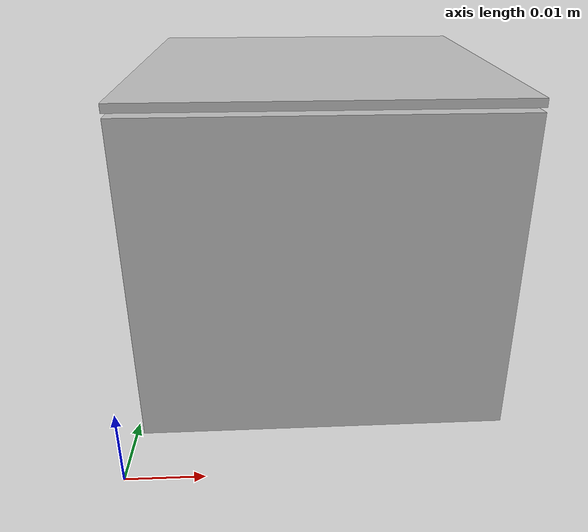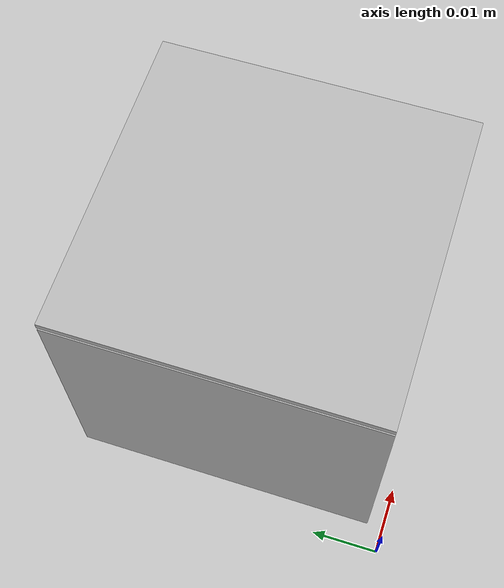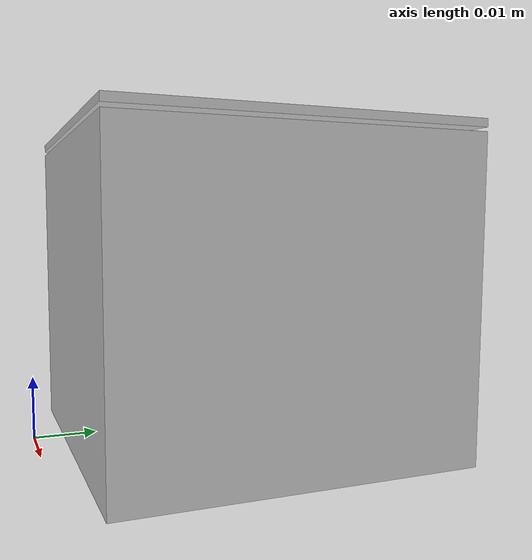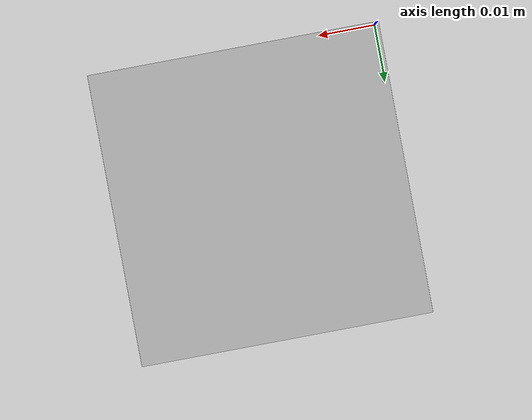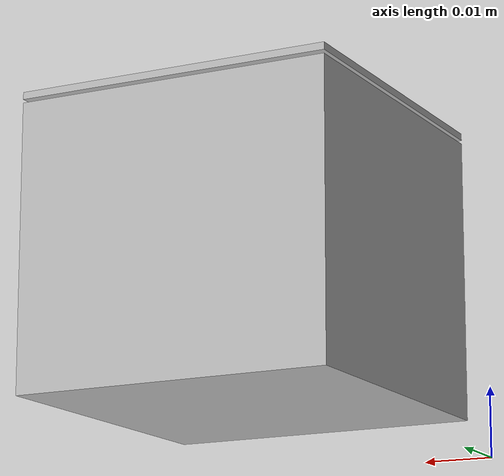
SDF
<?xml version="1.0"?>
<sdf version="1.5">
  <model name="block">

    <pose>0 0 0 0 0 0</pose>
    <static>false</static>
    <link name="box">
      <pose>0.025 0.025 0.025 0 0 0</pose>
      <self_collide>true</self_collide>
      <inertial>
        <inertia>
          <ixx>0.0001</ixx>
          <ixy>0</ixy>
          <ixz>0</ixz>
          <iyy>0.0001</iyy>
          <iyz>0</iyz>
          <izz>0.0001</izz>
        </inertia>
        <mass>0.5</mass>
      </inertial>

      <collision name="collision">
        <geometry>
          <box>
            <size>0.045 0.045 0.04</size>
          </box>
        </geometry>
      </collision>

      <visual name="visual">
        <geometry>
          <box>
            <size>0.045 0.045 0.04</size>
          </box>
        </geometry>
      </visual>
    </link>

    <link name="tag">
      <pose>0.025 0.025 0.046 0 0 0</pose>
      <static>false</static>
      <gravity>true</gravity>
      <self_collide>true</self_collide>
      <inertial>
        <inertia>
          <ixx>0.0001</ixx>
          <ixy>0</ixy>
          <ixz>0</ixz>
          <iyy>0.0001</iyy>
          <iyz>0</iyz>
          <izz>0.0001</izz>
        </inertia>
        <mass>0.008</mass>
      </inertial>

      <collision name="collision">
        <geometry>
          <box>
            <size>0.045 0.045 0.001</size>
          </box>
        </geometry>
      </collision>

      <visual name="visual">
        <geometry>
          <box>
            <normal>0 0 1</normal>
            <size>0.045 0.045 0.001</size>
          </box>
        </geometry>
        <material>
          <script>
            <uri>model://block/materials/aruco.material</uri>
            <uri>model://block/materials/textures/</uri>
            <name>Aruco/Image</name>
          </script>
        </material>
      </visual>
    </link>

    <joint name="boxToLink" type="fixed">
      <parent>box</parent>
      <child>tag</child>
      <pose>0.025 0.025 0.048 0 0 0</pose>
    </joint>
  </model>
</sdf>
